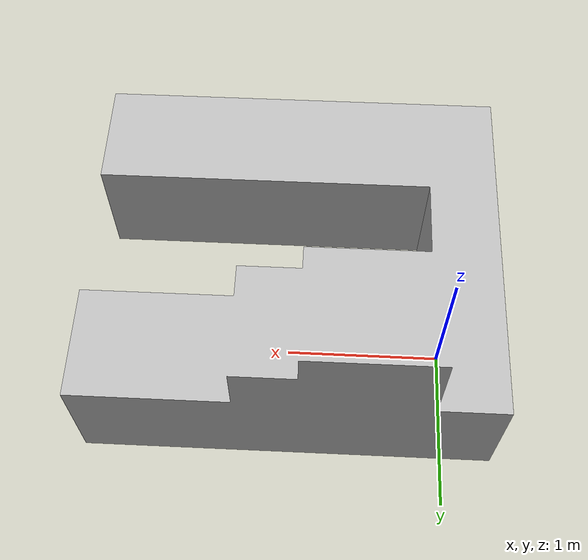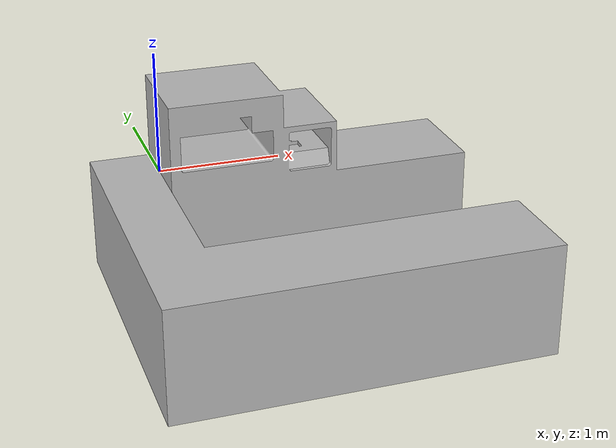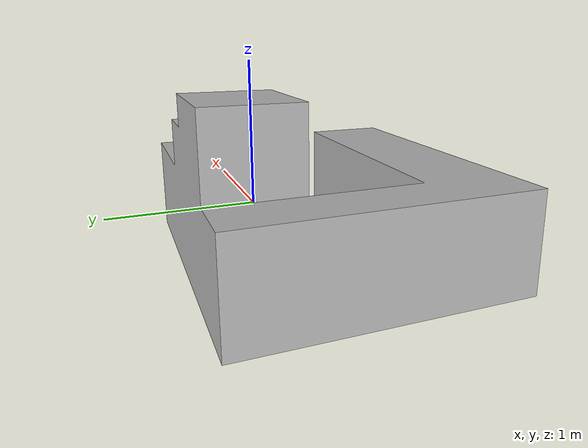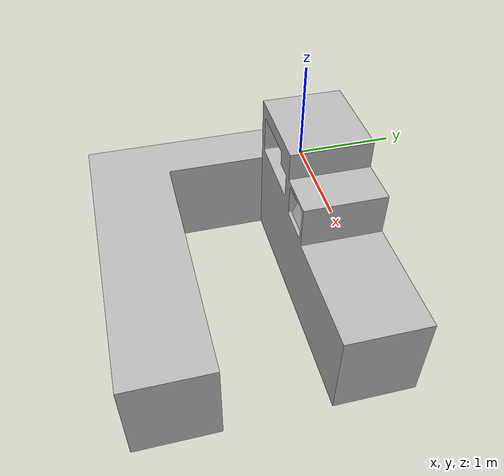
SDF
<?xml version="1.0" ?>
<sdf version="1.6">
  <model name="labworld">
    <static>true</static>
    <link name="labworld_link">
      <visual name="labworld_visual">
        <geometry>
          <mesh>
            <uri>model://labworld/meshes/labworld.stl</uri>
            <scale>0.001 0.001 0.001</scale>
          </mesh>
        </geometry>
      </visual>

      <collision name="box_collision_1">
        <pose>0.2 0 -0.3 0 0 0</pose>
        <geometry>
          <box>
            <size>1.50 0.8 0.92</size>
          </box>
        </geometry>
      </collision>

      <collision name="box_collision_2">
        <pose>1.1 0 -0.2 0 0 0</pose>
        <geometry>
          <box>
            <size>0.12 0.12 0.4</size>
          </box>
        </geometry>
      </collision>

    </link>
  </model>
</sdf>
